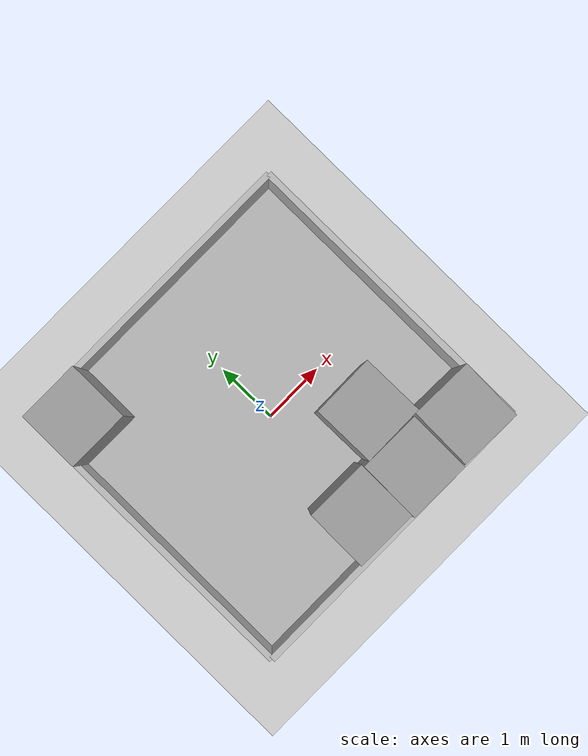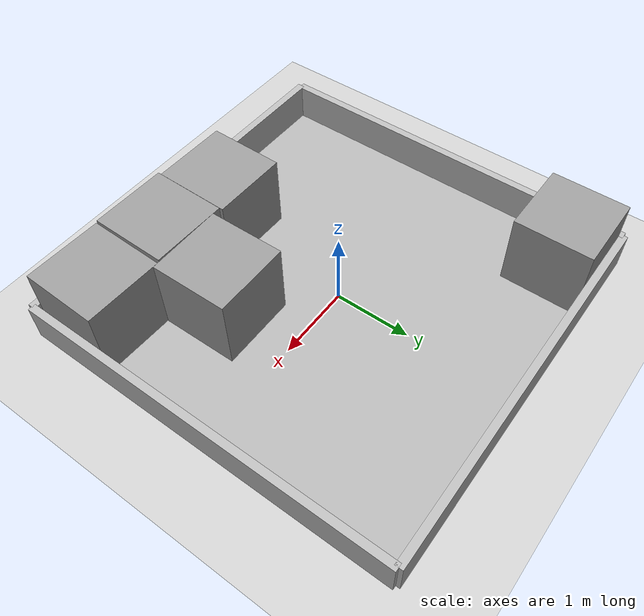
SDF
<sdf version="1.7">
 <world name="default">
  <light name="sun" type="directional">
   <pose>0 0 10 0 -0 0</pose>
   <diffuse>0.8 0.8 0.8 1</diffuse>
   <specular>0.2 0.2 0.2 1</specular>
   <attenuation>
    <range>1000</range>
    <constant>0.9</constant>
    <linear>0.01</linear>
    <quadratic>0.001</quadratic>
   </attenuation>
   <direction>-0.5 0.1 -0.9</direction>
   <spot><inner_angle>0</inner_angle><outer_angle>0</outer_angle><falloff>0</falloff></spot>
  </light>
  <model name="ground_plane">
   <static>1</static>
   <link name="link">
    <collision name="collision">
     <geometry><plane><normal>0 0 1</normal><size>100 100</size></plane></geometry>
     <surface><friction><ode><mu>100</mu><mu2>50</mu2></ode></friction></surface>
    </collision>
    <visual name="visual">
     <cast_shadows>0</cast_shadows>
     <geometry><plane><normal>0 0 1</normal><size>100 100</size></plane></geometry>
     <material>
      <script><uri>file://media/materials/scripts/gazebo.material</uri><name>Gazebo/Grey</name></script>
     </material>
    </visual>
   </link>
  </model>
  <model name="floor">
   <static>1</static>
   <link name="link">
    <collision name="collision"><geometry><box><size>5 5 0.01</size></box></geometry></collision>
    <visual name="visual">
     <geometry><box><size>5 5 0.01</size></box></geometry>
     <material><ambient>0.7 0.7 0.7 1</ambient><diffuse>0.7 0.7 0.7 1</diffuse></material>
    </visual>
   </link>
  </model>
  <model name="wall_bottom">
   <static>1</static>
   <link name="link">
    <pose>0 -2.5 0.25 0 -0 0</pose>
    <collision name="collision"><geometry><box><size>5 0.1 0.5</size></box></geometry></collision>
    <visual name="visual"><geometry><box><size>5 0.1 0.5</size></box></geometry></visual>
   </link>
  </model>
  <model name="wall_top">
   <static>1</static>
   <link name="link">
    <pose>0 2.5 0.25 0 -0 0</pose>
    <collision name="collision"><geometry><box><size>5 0.1 0.5</size></box></geometry></collision>
    <visual name="visual"><geometry><box><size>5 0.1 0.5</size></box></geometry></visual>
   </link>
  </model>
  <model name="wall_left">
   <static>1</static>
   <link name="link">
    <pose>-2.5 0 0.25 0 -0 0</pose>
    <collision name="collision"><geometry><box><size>0.1 5 0.5</size></box></geometry></collision>
    <visual name="visual"><geometry><box><size>0.1 5 0.5</size></box></geometry></visual>
   </link>
  </model>
  <model name="wall_right">
   <static>1</static>
   <link name="link">
    <pose>2.5 0 0.25 0 -0 0</pose>
    <collision name="collision"><geometry><box><size>0.1 5 0.5</size></box></geometry></collision>
    <visual name="visual"><geometry><box><size>0.1 5 0.5</size></box></geometry></visual>
   </link>
  </model>
  <gravity>0 0 -9.8</gravity>
  <magnetic_field>6e-06 2.3e-05 -4.2e-05</magnetic_field>
  <atmosphere type="adiabatic"/>
  <physics type="ode">
   <max_step_size>0.001</max_step_size>
   <real_time_factor>1</real_time_factor>
   <real_time_update_rate>1000</real_time_update_rate>
  </physics>
  <scene><ambient>0.4 0.4 0.4 1</ambient><background>0.7 0.7 0.7 1</background><shadows>1</shadows></scene>
  <spherical_coordinates>
   <surface_model>EARTH_WGS84</surface_model>
   <latitude_deg>0</latitude_deg>
   <longitude_deg>0</longitude_deg>
   <elevation>0</elevation>
   <heading_deg>0</heading_deg>
  </spherical_coordinates>
  <model name="unit_box">
   <pose>1.92785 -1.93819 0.504996 -0 9e-06 -0.02311</pose>
   <link name="link">
    <inertial>
     <mass>1</mass>
     <inertia>
      <ixx>0.166667</ixx>
      <ixy>0</ixy>
      <ixz>0</ixz>
      <iyy>0.166667</iyy>
      <iyz>0</iyz>
      <izz>0.166667</izz>
     </inertia>
    </inertial>
    <collision name="collision"><geometry><box><size>1 1 1</size></box></geometry></collision>
    <visual name="visual">
     <geometry><box><size>1 1 1</size></box></geometry>
     <material>
      <script><name>Gazebo/Grey</name><uri>file://media/materials/scripts/gazebo.material</uri></script>
     </material>
    </visual>
   </link>
  </model>
  <model name="unit_box_0">
   <pose>0.896386 -1.94266 0.505 0 -0 -0.012115</pose>
   <link name="link">
    <inertial>
     <mass>1</mass>
     <inertia>
      <ixx>0.166667</ixx>
      <ixy>0</ixy>
      <ixz>0</ixz>
      <iyy>0.166667</iyy>
      <iyz>0</iyz>
      <izz>0.166667</izz>
     </inertia>
    </inertial>
    <collision name="collision"><geometry><box><size>1 1 1</size></box></geometry></collision>
    <visual name="visual">
     <geometry><box><size>1 1 1</size></box></geometry>
     <material>
      <script><name>Gazebo/Grey</name><uri>file://media/materials/scripts/gazebo.material</uri></script>
     </material>
    </visual>
   </link>
  </model>
  <model name="unit_box_1">
   <pose>-0.104783 -1.8885 0.505 0 -0 -0.009313</pose>
   <link name="link">
    <inertial>
     <mass>1</mass>
     <inertia>
      <ixx>0.166667</ixx>
      <ixy>0</ixy>
      <ixz>0</ixz>
      <iyy>0.166667</iyy>
      <iyz>0</iyz>
      <izz>0.166667</izz>
     </inertia>
    </inertial>
    <collision name="collision"><geometry><box><size>1 1 1</size></box></geometry></collision>
    <visual name="visual">
     <geometry><box><size>1 1 1</size></box></geometry>
     <material>
      <script><name>Gazebo/Grey</name><uri>file://media/materials/scripts/gazebo.material</uri></script>
     </material>
    </visual>
   </link>
  </model>
  <model name="unit_box_2">
   <pose>-1.94906 1.95 0.505937 0 0.001875 0</pose>
   <link name="link">
    <inertial>
     <mass>1</mass>
     <inertia>
      <ixx>0.166667</ixx>
      <ixy>0</ixy>
      <ixz>0</ixz>
      <iyy>0.166667</iyy>
      <iyz>0</iyz>
      <izz>0.166667</izz>
     </inertia>
    </inertial>
    <collision name="collision"><geometry><box><size>1 1 1</size></box></geometry></collision>
    <visual name="visual">
     <geometry><box><size>1 1 1</size></box></geometry>
     <material>
      <script><name>Gazebo/Grey</name><uri>file://media/materials/scripts/gazebo.material</uri></script>
     </material>
    </visual>
   </link>
  </model>
  <model name="unit_box_3">
   <pose>1.00391 -0.931616 0.505002 -4e-06 0 0.011978</pose>
   <link name="link">
    <inertial>
     <mass>1</mass>
     <inertia>
      <ixx>0.166667</ixx>
      <ixy>0</ixy>
      <ixz>0</ixz>
      <iyy>0.166667</iyy>
      <iyz>0</iyz>
      <izz>0.166667</izz>
     </inertia>
    </inertial>
    <collision name="collision"><geometry><box><size>1 1 1</size></box></geometry></collision>
    <visual name="visual">
     <geometry><box><size>1 1 1</size></box></geometry>
     <material>
      <script><name>Gazebo/Grey</name><uri>file://media/materials/scripts/gazebo.material</uri></script>
     </material>
    </visual>
   </link>
  </model>
 </world>
</sdf>
